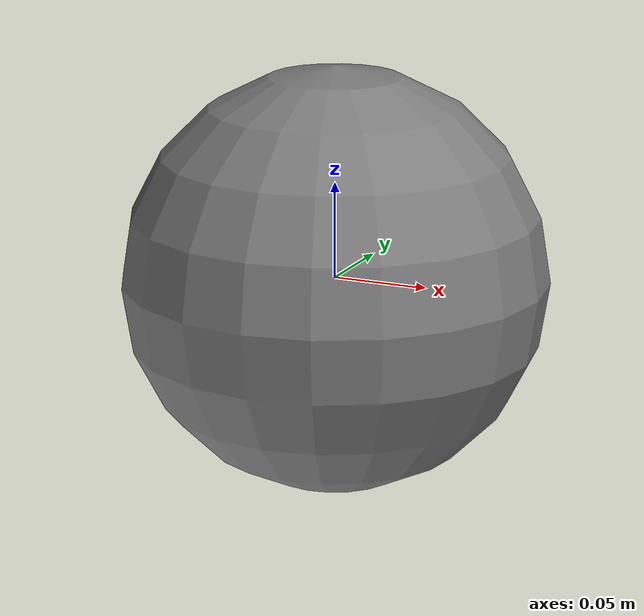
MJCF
<mujoco model="soccer_ball">
  <compiler angle="radian"/>

  <default>
    <geom condim="6"/>
  </default>

  <worldbody>
    <body name="ball_body">
      <freejoint name="ball_joint"/>
      <inertial pos="0 0 0" mass="0.43" diaginertia="0.0021 0.0021 0.0021"/>
      <geom name="ball_collision"
            type="sphere" size="0.11"
            friction="1.0 0.01 0.05"
            solref="-10000 -100"
            solimp="0.9 0.95 0.001 0.5 2"
            priority="0"
            group="1"/>
      <geom name="ball_visual"
            type="sphere" size="0.11"
            contype="0" conaffinity="0"
            group="0"
            rgba="1.0 0.5 0.0 1.0"/>
    </body>
  </worldbody>
</mujoco>
